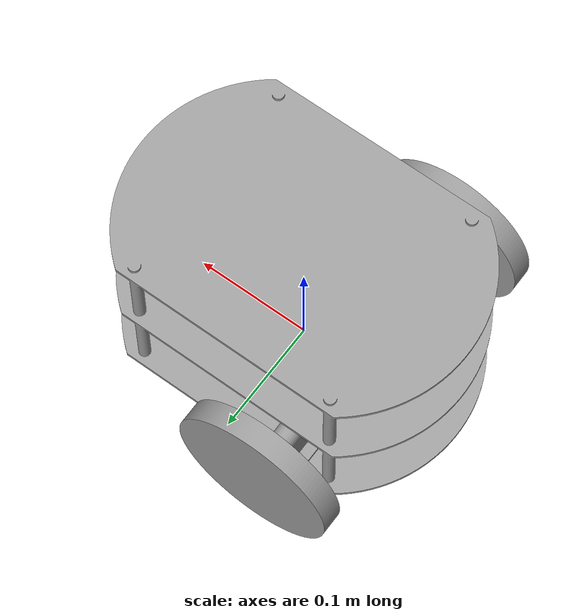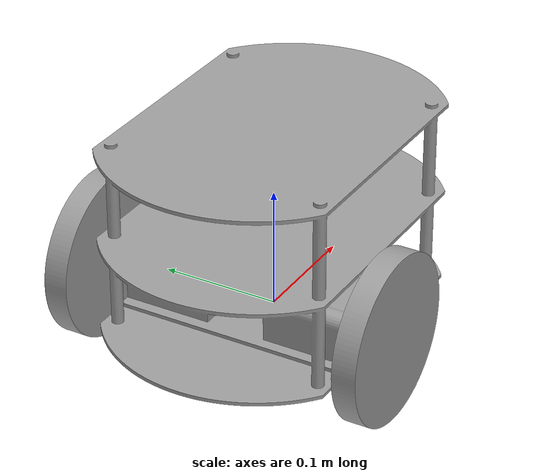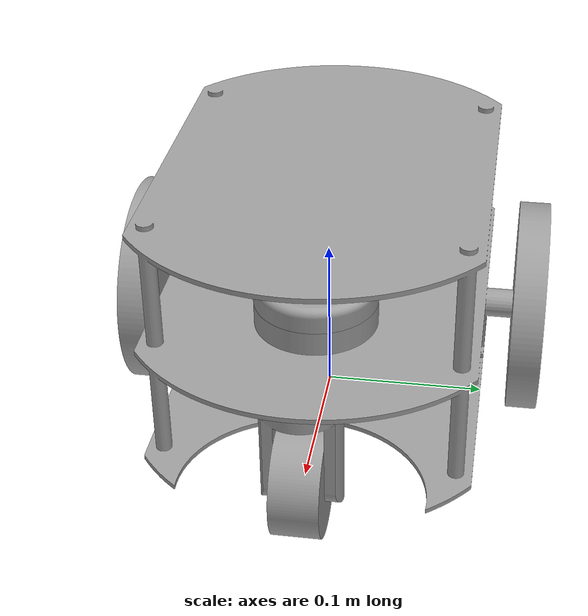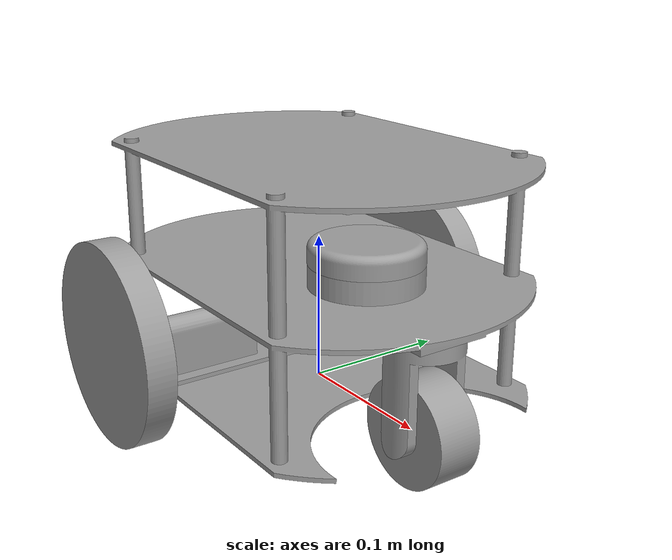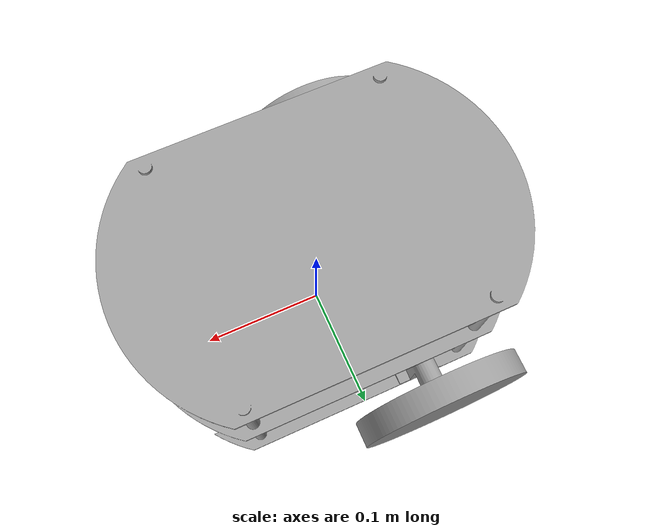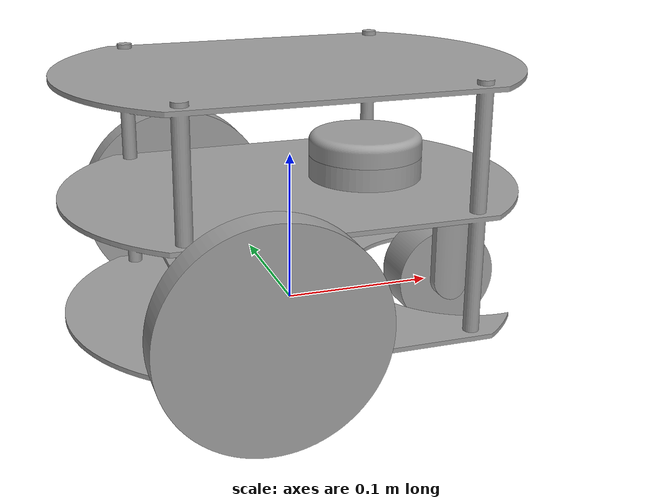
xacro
<?xml version="1.0" ?>
<robot name="polybot" xmlns:xacro="http://www.ros.org/wiki/xacro">

<xacro:include filename="$(find polybot_description)/urdf/materials.xacro" />
<xacro:include filename="$(find polybot_description)/urdf/polybot.trans" />
<link name="base_link">
  <inertial>
    <origin rpy="0 0 0" xyz="-0.006042588395459771 -7.966765037310012e-16 0.07288437083744741"/>
    <mass value="5.735453926792375"/>
    <inertia ixx="0.037854" ixy="-0.0" ixz="-0.005237" iyy="0.048939" iyz="-0.0" izz="0.050353"/>
  </inertial>
  <visual>
    <origin rpy="0 0 0" xyz="0 0 0"/>
    <geometry>
      <mesh filename="package://polybot_description/meshes/base_link.stl" scale="0.001 0.001 0.001"/>
    </geometry>
    <material name="steel_satin"/>
  </visual>
  <collision>
    <origin rpy="0 0 0" xyz="0 0 0"/>
    <geometry>
      <mesh filename="package://polybot_description/meshes/base_link.stl" scale="0.001 0.001 0.001"/>
    </geometry>
  </collision>
</link>

<link name="FrontWheel-Body_1">
  <inertial>
    <origin rpy="0 0 0" xyz="8.326672684688674e-17 -2.9886291025657957e-18 -0.026349194560915584"/>
    <mass value="0.37326548623435213"/>
    <inertia ixx="0.000303" ixy="0.0" ixz="0.0" iyy="0.000227" iyz="-0.0" izz="0.000143"/>
  </inertial>
  <visual>
    <origin rpy="0 0 0" xyz="-0.11 -0.0 -0.068"/>
    <geometry>
      <mesh filename="package://polybot_description/meshes/FrontWheel-Body_1.stl" scale="0.001 0.001 0.001"/>
    </geometry>
    <material name="steel_satin"/>
  </visual>
  <collision>
    <origin rpy="0 0 0" xyz="-0.11 -0.0 -0.068"/>
    <geometry>
      <mesh filename="package://polybot_description/meshes/FrontWheel-Body_1.stl" scale="0.001 0.001 0.001"/>
    </geometry>
  </collision>
</link>

<link name="Wheel-Front_1">
  <inertial>
    <origin rpy="0 0 0" xyz="-1.3877787807814457e-17 -0.014999999999999998 1.0408340855860843e-17"/>
    <mass value="0.9063102106524855"/>
    <inertia ixx="0.000346" ixy="0.0" ixz="0.0" iyy="0.000555" iyz="-0.0" izz="0.000346"/>
  </inertial>
  <visual>
    <origin rpy="0 0 0" xyz="-0.11 -0.015 -0.0055"/>
    <geometry>
      <mesh filename="package://polybot_description/meshes/Wheel-Front_1.stl" scale="0.001 0.001 0.001"/>
    </geometry>
    <material name="steel_satin"/>
  </visual>
  <collision>
    <origin rpy="0 0 0" xyz="-0.11 -0.015 -0.0055"/>
    <geometry>
      <mesh filename="package://polybot_description/meshes/Wheel-Front_1.stl" scale="0.001 0.001 0.001"/>
    </geometry>
  </collision>
</link>

<link name="LiDAR_1">
  <inertial>
    <origin rpy="0 0 0" xyz="0.0 -4.369780135393061e-18 0.007379903365776486"/>
    <mass value="0.5105758461886611"/>
    <inertia ixx="0.000186" ixy="-0.0" ixz="0.0" iyy="0.000186" iyz="-0.0" izz="0.000353"/>
  </inertial>
  <visual>
    <origin rpy="0 0 0" xyz="-0.0525 -0.0 -0.096"/>
    <geometry>
      <mesh filename="package://polybot_description/meshes/LiDAR_1.stl" scale="0.001 0.001 0.001"/>
    </geometry>
    <material name="steel_satin"/>
  </visual>
  <collision>
    <origin rpy="0 0 0" xyz="-0.0525 -0.0 -0.096"/>
    <geometry>
      <mesh filename="package://polybot_description/meshes/LiDAR_1.stl" scale="0.001 0.001 0.001"/>
    </geometry>
  </collision>
</link>

<link name="Wheel2_1">
  <inertial>
    <origin rpy="0 0 0" xyz="2.7755575615628914e-17 0.009999999999999995 -6.938893903907228e-18"/>
    <mass value="2.3482682519273395"/>
    <inertia ixx="0.002873" ixy="-0.0" ixz="0.0" iyy="0.00559" iyz="0.0" izz="0.002873"/>
  </inertial>
  <visual>
    <origin rpy="0 0 0" xyz="0.051 -0.117 -0.036"/>
    <geometry>
      <mesh filename="package://polybot_description/meshes/Wheel2_1.stl" scale="0.001 0.001 0.001"/>
    </geometry>
    <material name="steel_satin"/>
  </visual>
  <collision>
    <origin rpy="0 0 0" xyz="0.051 -0.117 -0.036"/>
    <geometry>
      <mesh filename="package://polybot_description/meshes/Wheel2_1.stl" scale="0.001 0.001 0.001"/>
    </geometry>
  </collision>
</link>

<link name="Wheel1_1">
  <inertial>
    <origin rpy="0 0 0" xyz="2.7755575615628914e-17 -0.010000000000000023 -6.938893903907228e-18"/>
    <mass value="2.3482682519273395"/>
    <inertia ixx="0.002873" ixy="0.0" ixz="0.0" iyy="0.00559" iyz="0.0" izz="0.002873"/>
  </inertial>
  <visual>
    <origin rpy="0 0 0" xyz="0.051 0.117 -0.036"/>
    <geometry>
      <mesh filename="package://polybot_description/meshes/Wheel1_1.stl" scale="0.001 0.001 0.001"/>
    </geometry>
    <material name="steel_satin"/>
  </visual>
  <collision>
    <origin rpy="0 0 0" xyz="0.051 0.117 -0.036"/>
    <geometry>
      <mesh filename="package://polybot_description/meshes/Wheel1_1.stl" scale="0.001 0.001 0.001"/>
    </geometry>
  </collision>
</link>

<joint name="FrontTurnJoint" type="continuous">
  <origin rpy="0 0 0" xyz="0.11 0.0 0.068"/>
  <parent link="base_link"/>
  <child link="FrontWheel-Body_1"/>
  <axis xyz="0.0 0.0 -1.0"/>
</joint>

<joint name="FrontWheel" type="continuous">
  <origin rpy="0 0 0" xyz="0.0 0.015 -0.0625"/>
  <parent link="FrontWheel-Body_1"/>
  <child link="Wheel-Front_1"/>
  <axis xyz="0.0 -1.0 0.0"/>
</joint>

<joint name="LiDAR" type="continuous">
  <origin rpy="0 0 0" xyz="0.0525 0.0 0.096"/>
  <parent link="base_link"/>
  <child link="LiDAR_1"/>
  <axis xyz="0.0 0.0 1.0"/>
</joint>

<joint name="Wheel2" type="continuous">
  <origin rpy="0 0 0" xyz="-0.051 0.117 0.036"/>
  <parent link="base_link"/>
  <child link="Wheel2_1"/>
  <axis xyz="0.0 1.0 0.0"/>
</joint>

<joint name="Wheel1" type="continuous">
  <origin rpy="0 0 0" xyz="-0.051 -0.117 0.036"/>
  <parent link="base_link"/>
  <child link="Wheel1_1"/>
  <axis xyz="0.0 -1.0 0.0"/>
</joint>

</robot>

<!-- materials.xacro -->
<robot name="polybot" xmlns:xacro="http://www.ros.org/wiki/xacro" >

<material name="silver_default">
  <color rgba="0.700 0.700 0.700 1.000"/>
</material>
<material name="steel_satin">
  <color rgba="0.6274509803921569 0.6274509803921569 0.6274509803921569 1.0"/>
</material>

</robot>
